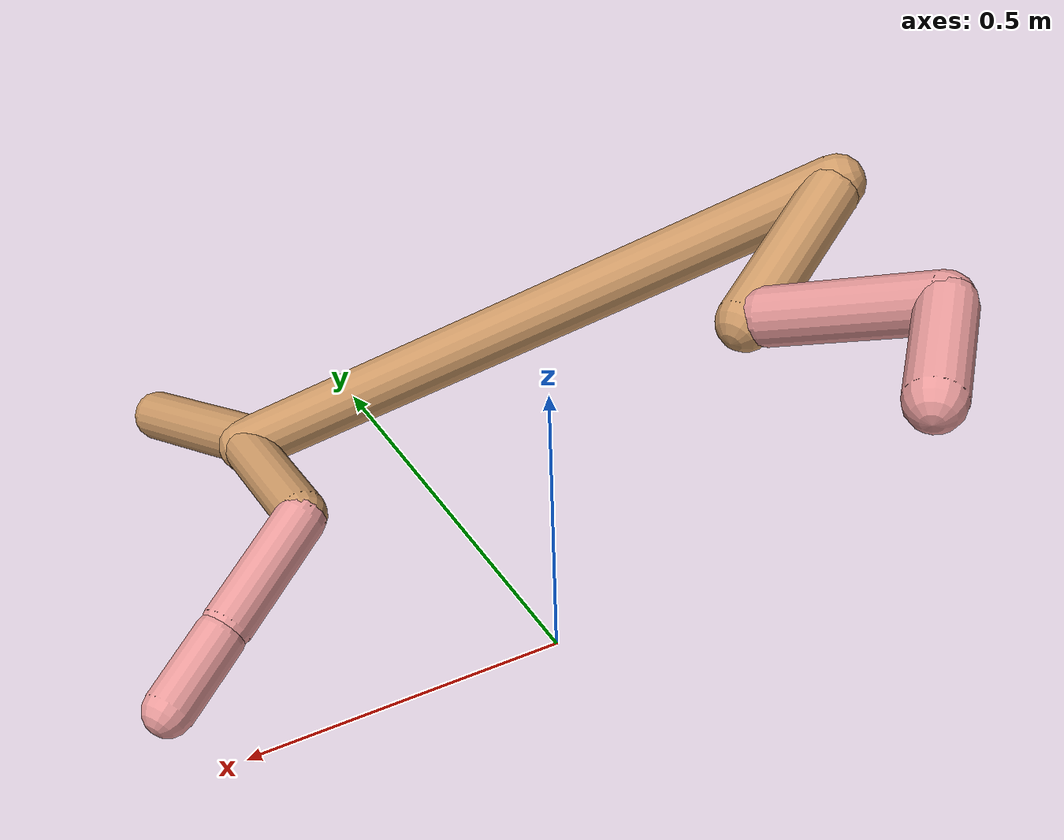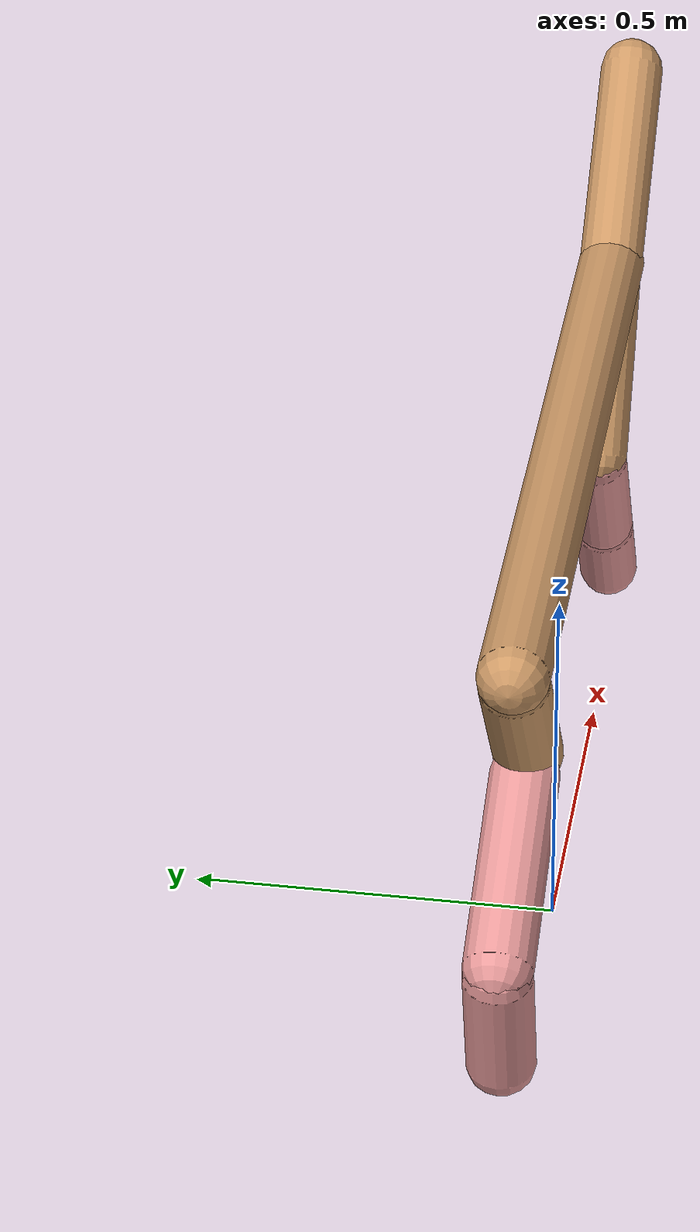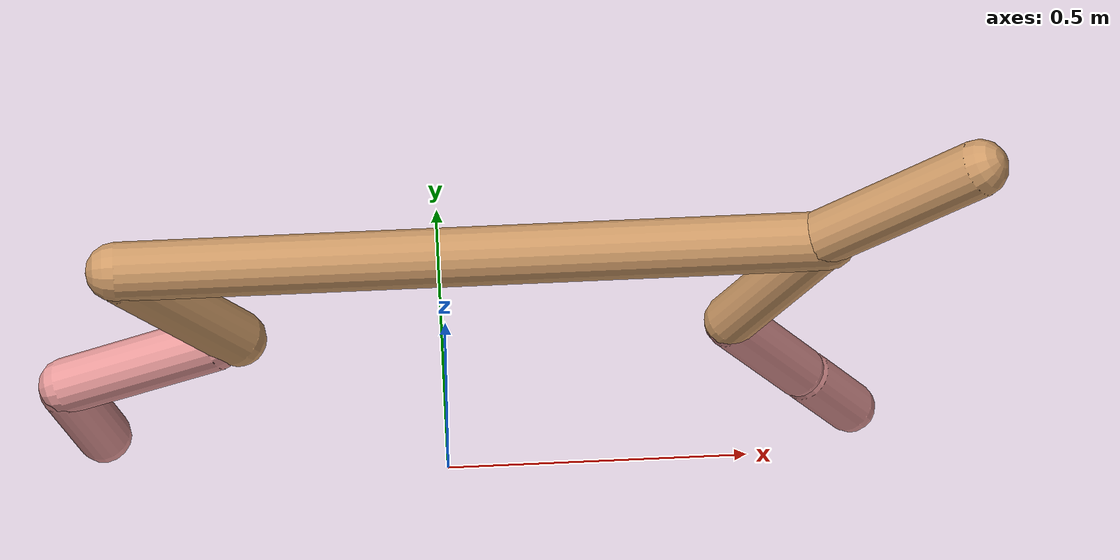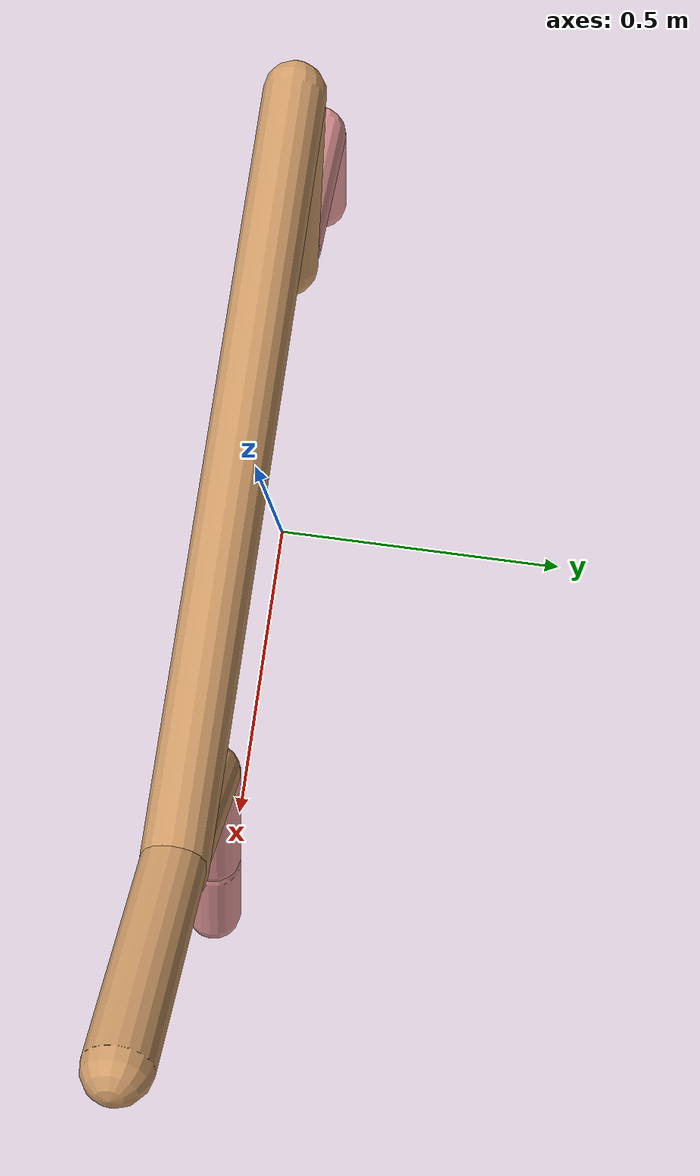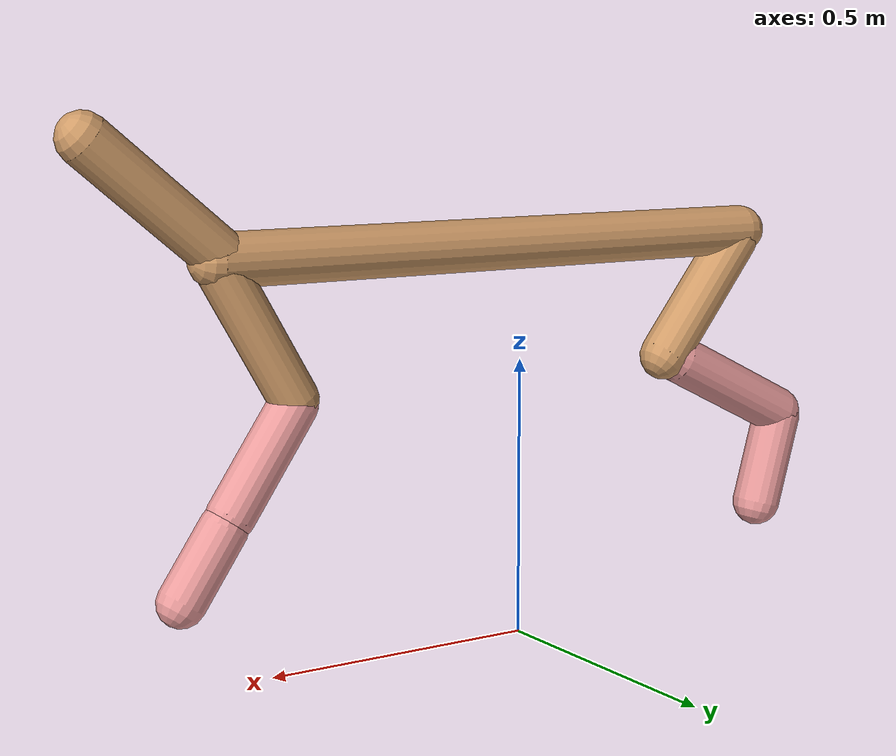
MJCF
<mujoco model="cheetah">
  <compiler angle="radian" coordinate="local" inertiafromgeom="true" settotalmass="14" />
  <default>
    <joint armature=".1" damping=".01" limited="true" solimplimit="0 .8 .03" solreflimit=".02 1" stiffness="8" />
    <geom conaffinity="0" condim="3" contype="1" friction="0.8 .1 .1" rgba="0.8 0.6 .4 1" solimp="0.0 0.8 0.01" solref="0.02 1" />
    <motor ctrllimited="true" ctrlrange="-1 1" />
  </default>
  <size nstack="300000" nuser_geom="1" />
  <option gravity="0 0 -9.81" timestep="0.01" />
  <worldbody>
    <body name="torso" pos="0.0 0.0 0.7068507185223344">
      <joint armature="0" axis="1 0 0" damping="0" limited="false" name="ignorex" pos="0 0 0" stiffness="0" type="slide" />
      <joint armature="0" axis="0 0 1" damping="0" limited="false" name="ignorez" pos="0 0 0" stiffness="0" type="slide" />
      <joint armature="0" axis="0 1 0" damping="0" limited="false" name="ignorey" pos="0 0 0" stiffness="0" type="hinge" />
      <geom fromto="-0.5 0.0 0.0 0.5870242483904059 0.0 0.0" name="torso" size="0.04568929083514096" type="capsule" />
      <geom axisangle="0 1 0 .87" name="head" pos="0.687024248390406 0.0 0.1" size="0.04387118423477307 0.15" type="capsule" />

      <body name="bthigh" pos="-.5 0 0">
        <joint axis="0 1 0" damping="6" name="bthigh" pos="0 0 0" range="-.52 1.05" stiffness="240" type="hinge" />
        <geom axisangle="0 1 0 -3.8" name="bthigh" pos="0.09300466049331349 0.0 -0.12090605864130752" size="0.04502513299502434 0.13352679015056612" type="capsule" />
        <body name="bshin" pos="0.14600932098662697 0.0 -0.23181211728261503">
          <joint axis="0 1 0" damping="4.5" name="bshin" pos="0 0 0" range="-.785 .785" stiffness="180" type="hinge" />
          <geom axisangle="0 1 0 -2.03" name="bshin" pos="-0.12938418876822583 0.0 -0.06469209438411291" rgba="0.9 0.6 0.6 1" size="0.04502513299502434 0.13813116222472357" type="capsule" />
          <body name="bfoot" pos="-0.25876837753645165 0.0 -0.12938418876822583">
            <joint axis="0 1 0" damping="3" name="bfoot" pos="0 0 0" range="-.4 .785" stiffness="120" type="hinge" />
            <geom axisangle="0 1 0 -.27" name="bfoot" pos="0.027802353815776115 0.0 -0.08989427733767612" rgba="0.9 0.6 0.6 1" size="0.04502513299502434 0.08656219499416011" type="capsule" />
            <inertial mass="10" />
          </body>
        </body>
      </body>
      <body name="fthigh" pos="0.587024248390406 0.0 0.0">
        <joint axis="0 1 0" damping="4.5" name="fthigh" pos="0 0 0" range="-1.5 0.8" stiffness="180" type="hinge" />
        <geom axisangle="0 1 0 .52" name="fthigh" pos="-0.07048022996806234 0.0 -0.12082325137382113" size="0.04197123254560479 0.13395308113333734" type="capsule" />
        <body name="fshin" pos="-0.1409604599361247 0.0 -0.24164650274764227">
          <joint axis="0 1 0" damping="3" name="fshin" pos="0 0 0" range="-1.2 1.1" stiffness="120" type="hinge" />
          <geom axisangle="0 1 0 -.6" name="fshin" pos="0.06544473774485207 0.0 -0.09061579072364132" rgba="0.9 0.6 0.6 1" size="0.04197123254560479 0.10675959849724628" type="capsule" />
          <body name="ffoot" pos="0.13088947548970414 0.0 -0.18123158144728263">
            <joint axis="0 1 0" damping="1.5" name="ffoot" pos="0 0 0" range="-3.1 -0.3" stiffness="60" type="hinge" />
            <geom axisangle="0 1 0 -.6" name="ffoot" pos="0.045271255714731486 0.0 -0.07042195333402676" rgba="0.9 0.6 0.6 1" size="0.04197123254560479 0.07050162164912492" type="capsule" />
            <inertial mass="10" />
          </body>
        </body>
      </body>
    </body>
  </worldbody>
  <actuator>
    <motor gear="120" joint="bthigh" name="bthigh" />
    <motor gear="90" joint="bshin" name="bshin" />
    <motor gear="60" joint="bfoot" name="bfoot" />
    <motor gear="120" joint="fthigh" name="fthigh" />
    <motor gear="60" joint="fshin" name="fshin" />
    <motor gear="30" joint="ffoot" name="ffoot" />
  </actuator>
</mujoco>
